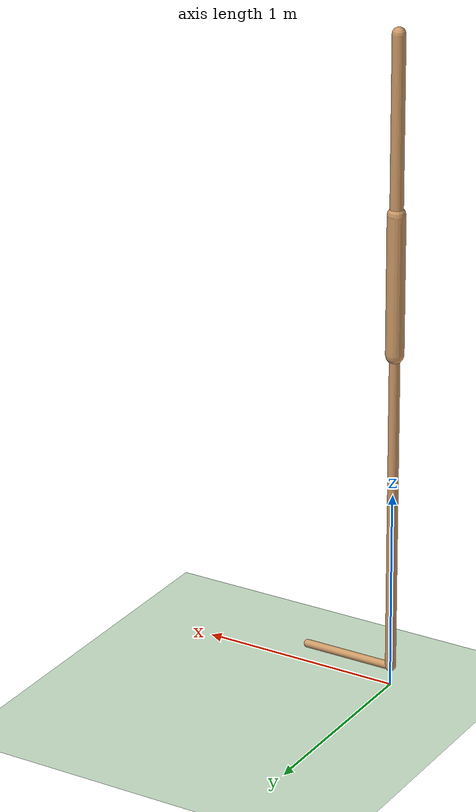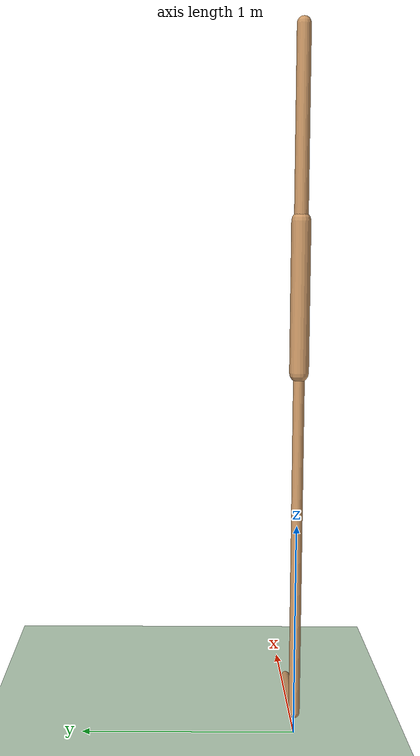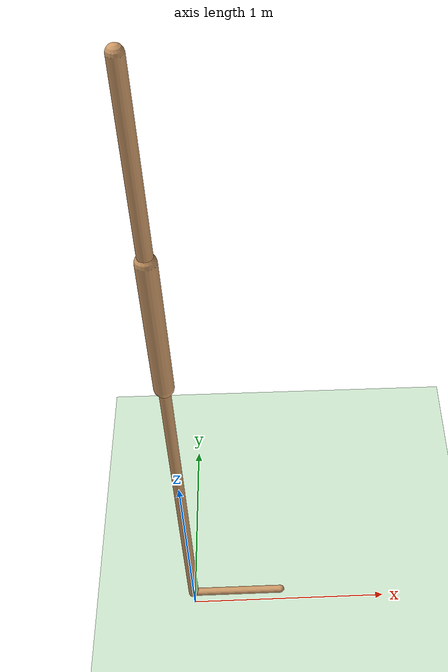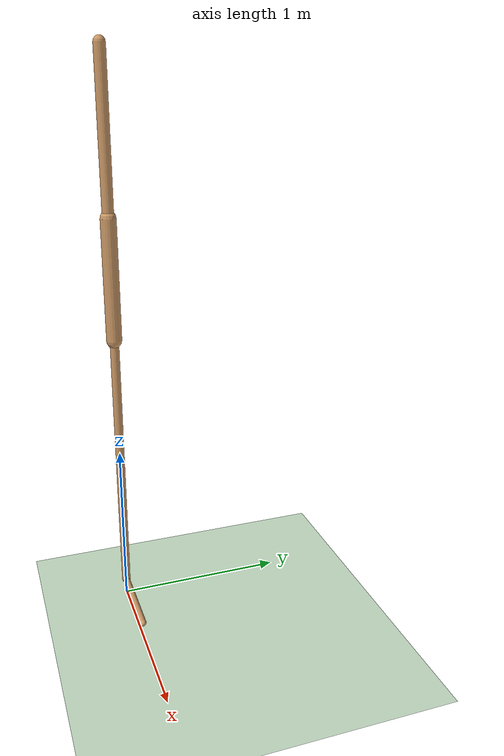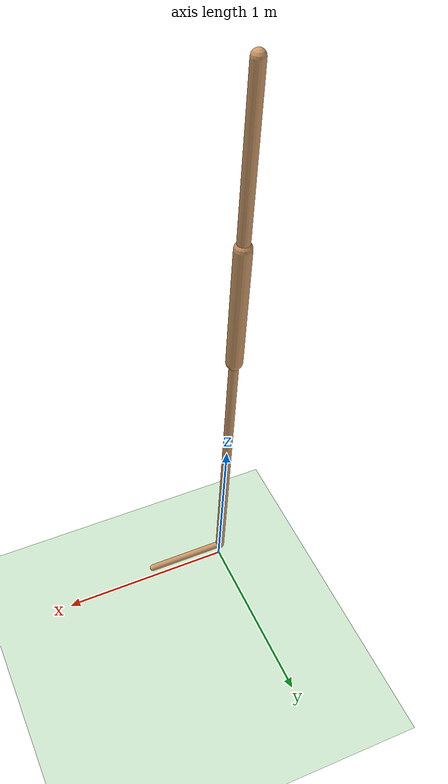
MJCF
<mujoco model="walker2d">
  <compiler angle="degree" inertiafromgeom="true" />
  <default>
    <joint armature="0.01" damping=".1" limited="true" />
    <geom conaffinity="0" condim="3" contype="1" density="1000" friction=".7 .1 .1" rgba="0.8 0.6 .4 1" />
  </default>
  <option integrator="RK4" timestep="0.002" />
  <worldbody>
    <light cutoff="100" diffuse="1 1 1" dir="-0 0 -1.3" directional="true" exponent="1" pos="0 0 1.3" specular=".1 .1 .1" />
    <geom conaffinity="1" condim="3" name="floor" pos="0 0 0" rgba="0.8 0.9 0.8 1" size="40 40 40" type="plane" material="MatPlane" />
    <body name="torso" pos="0 0 2.820855176448822">
      <camera name="track" mode="trackcom" pos="0 -5 -1.25" xyaxes="1 0 0 0 0 1" />
      <joint armature="0" axis="1 0 0" damping="0" limited="false" name="rootx" pos="0 0 -1.25" stiffness="0" type="slide" />
      <joint armature="0" axis="0 0 1" damping="0" limited="false" name="rootz" pos="0 0 -1.25" ref="1.25" stiffness="0" type="slide" />
      <joint armature="0" axis="0 1 0" damping="0" limited="false" name="rooty" pos="0 0 0" stiffness="0" type="hinge" />
      <geom friction="0.9" name="torso_geom" size="0.032031700015068054 0.4256797432899475" type="capsule" />
      <body name="thigh" pos="0 0 -0.4256797432899475">
        <joint axis="0 -1 0" name="thigh_joint" pos="0 0 0" range="-150 0" type="hinge" />
        <site name="torso_thigh_site" pos="0 0 0" size="0.01" type="sphere" rgba="1 0 0 0.5" />
        <geom friction="0.9" pos="0 0 -0.34067773818969727" name="thigh_geom" size="0.044172171503305435 0.34067773818969727" type="capsule" />
        <body name="leg" pos="0 0 -1.4882654547691345">
          <joint axis="0 -1 0" name="leg_joint" pos="0 0 0.80690997838974" range="-150 0" type="hinge" />
          <site name="thigh_leg_site" pos="0 0 0.25" size="0.01" type="sphere" rgba="1 0 0 0.5" />
          <geom friction="0.9" name="leg_geom" size="0.025912392884492874 0.80690997838974" type="capsule" />
          <body name="foot" pos="0.4548984169960022 0 -0.90690997838974">
            <joint axis="0 -1 0" name="foot_joint" pos="-0.4548984169960022 0 0.1" range="-45 45" type="hinge" />
            <site name="leg_foot_site" pos="-0.2 0 0.1" size="0.01" type="sphere" rgba="1 0 0 0.5" />
            <geom friction="0.9" pos="-0.2274492084980011 0 0.1" quat="0.70710678118654757 0 -0.70710678118654746 0" name="foot_geom" size="0.01984228752553463 0.2274492084980011" type="capsule" />
          </body>
        </body>
      </body>

      <body name="thigh_left" pos="0 0 -0.4256797432899475">
        <joint axis="0 -1 0" name="thigh_left_joint" pos="0 0 0" range="-150 0" type="hinge" />
        <site name="torso_thigh_left_site" pos="0 0 0" size="0.01" type="sphere" rgba="1 0 0 0.5" />
        <geom friction="0.9" name="thigh_left_geom" rgba=".7 .3 .6 1" size="0.044172171503305435 0.34067773818969727" pos="0 0 -0.34067773818969727" type="capsule" />
        <body name="leg_left" pos="0 0 -1.4882654547691345">
          <joint axis="0 -1 0" name="leg_left_joint" pos="0 0 0.80690997838974" range="-150 0" type="hinge" />
          <site name="thigh_leg_left_site" pos="0 0 0.25" size="0.01" type="sphere" rgba="1 0 0 0.5" />
          <geom friction="0.9" name="leg_left_geom" rgba=".7 .3 .6 1" size="0.025912392884492874 0.80690997838974" type="capsule" />
          <body name="foot_left" pos="0.4548984169960022 0 -0.90690997838974">
            <joint axis="0 -1 0" name="foot_left_joint" pos="-0.4548984169960022 0 0.1" range="-45 45" type="hinge" />
            <site name="leg_foot_left_site" pos="-0.2 0 0.1" size="0.01" type="sphere" rgba="1 0 0 0.5" />
            <geom friction="1.9" name="foot_left_geom" rgba=".7 .3 .6 1" size="0.01984228752553463 0.2274492084980011" pos="-0.2274492084980011 0 0.1" type="capsule" quat="0.70710678118654757 0 -0.70710678118654746 0" />
          </body>
        </body>
      </body>
    </body>
  </worldbody>
  <actuator>

    <motor ctrllimited="true" ctrlrange="-1.0 1.0" gear="118.17312705906697" joint="thigh_joint" />
    <motor ctrllimited="true" ctrlrange="-1.0 1.0" gear="135.45035088388778" joint="leg_joint" />
    <motor ctrllimited="true" ctrlrange="-1.0 1.0" gear="24.875132693042378" joint="foot_joint" />
    <motor ctrllimited="true" ctrlrange="-1.0 1.0" gear="118.17312705906697" joint="thigh_left_joint" />
    <motor ctrllimited="true" ctrlrange="-1.0 1.0" gear="135.45035088388778" joint="leg_left_joint" />
    <motor ctrllimited="true" ctrlrange="-1.0 1.0" gear="24.875132693042378" joint="foot_left_joint" />

  </actuator>
    <asset>
        <texture type="skybox" builtin="gradient" rgb1=".4 .5 .6" rgb2="0 0 0" width="100" height="100" />
        <texture builtin="flat" height="1278" mark="cross" markrgb="1 1 1" name="texgeom" random="0.01" rgb1="0.8 0.6 0.4" rgb2="0.8 0.6 0.4" type="cube" width="127" />
        <texture builtin="checker" height="100" name="texplane" rgb1="0 0 0" rgb2="0.8 0.8 0.8" type="2d" width="100" />
        <material name="MatPlane" reflectance="0.5" shininess="1" specular="1" texrepeat="60 60" texture="texplane" />
        <material name="geom" texture="texgeom" texuniform="true" />
    </asset>

  <sensor>
    <force site="torso_thigh_site" name="torso_thigh_sensor" />
    <force site="thigh_leg_site" name="thigh_leg_sensor" />
    <force site="leg_foot_site" name="leg_foot_sensor" />
    <force site="torso_thigh_left_site" name="torso_thigh_left_sensor" />
    <force site="thigh_leg_left_site" name="thigh_leg_left_sensor" />
    <force site="leg_foot_left_site" name="leg_foot_left_sensor" />
  </sensor>
</mujoco>
